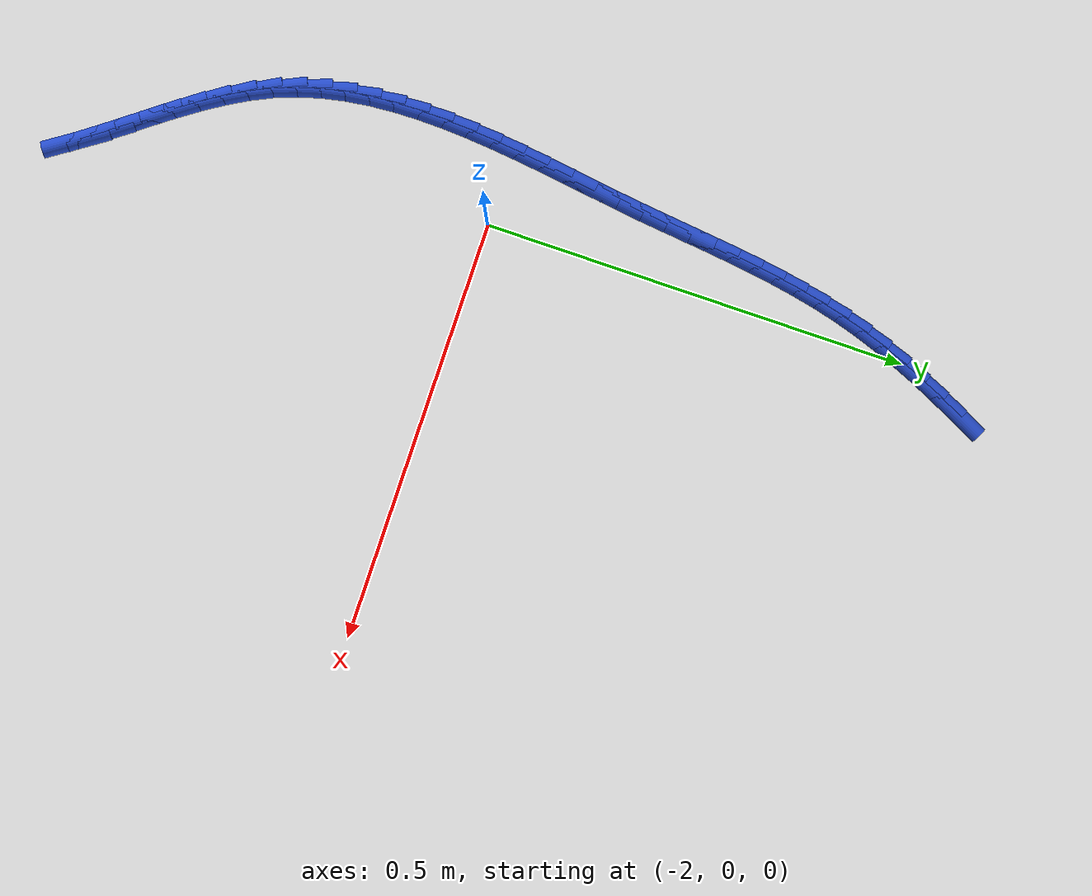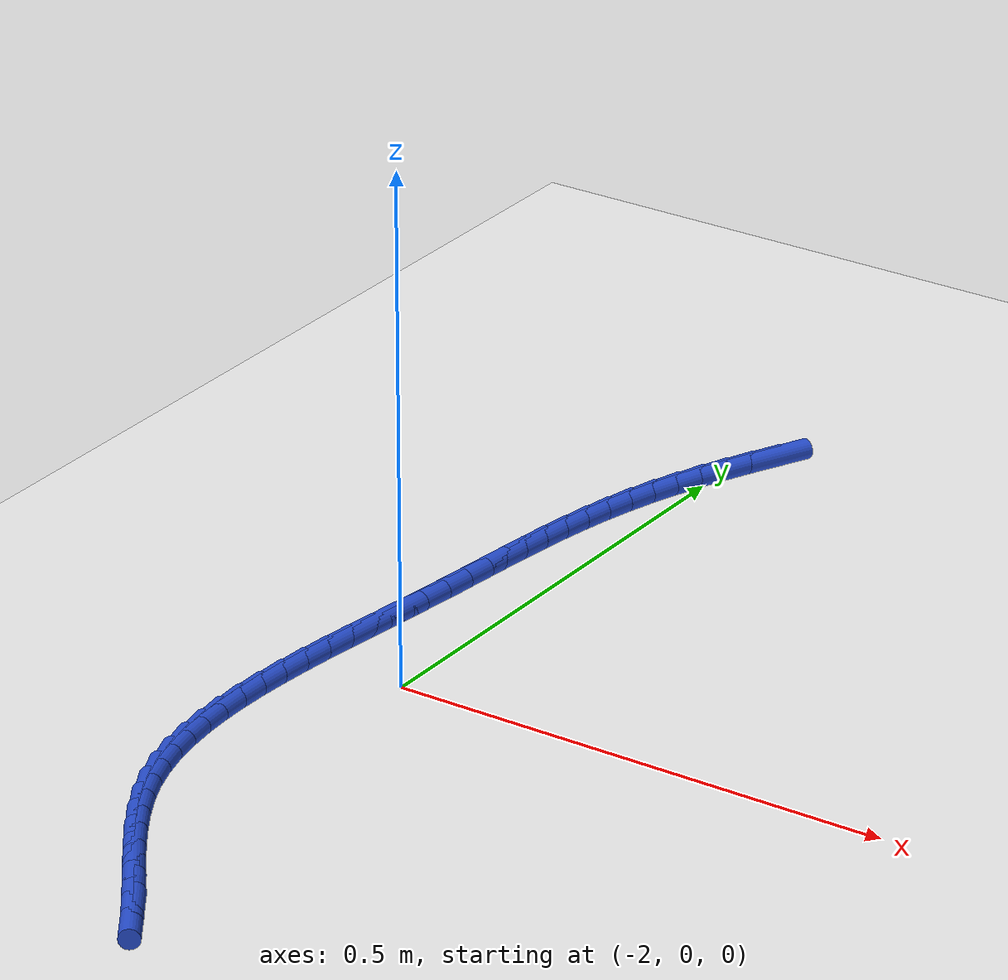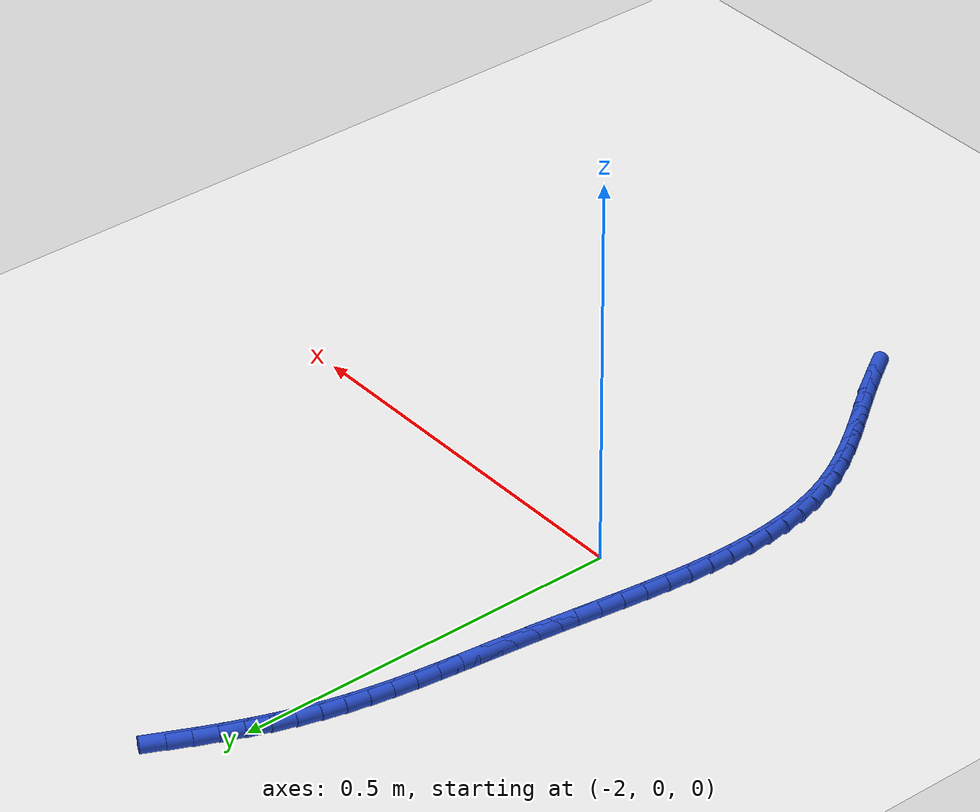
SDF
<sdf version="1.6">
 <world name="default">
  <model name="ground_plane">
   <static>1</static>
   <link name="link">
    <collision name="collision">
     <geometry><plane><normal>0 0 1</normal><size>100 100</size></plane></geometry>
     <surface><friction><ode><mu>100</mu><mu2>50</mu2></ode></friction></surface>
    </collision>
    <visual name="visual">
     <cast_shadows>0</cast_shadows>
     <geometry><plane><normal>0 0 1</normal><size>100 100</size></plane></geometry>
     <material>
      <script><uri>file://media/materials/scripts/gazebo.material</uri><name>Gazebo/WhiteGlow</name></script>
     </material>
    </visual>
   </link>
  </model>
  <model name="line">
   <link name="link_96">
    <pose>-1.9685399651001692 0.5728707135156921 0.01 0 1.57 1.1212060238936634</pose>
    <collision name="collision">
     <geometry><cylinder><radius>0.01</radius><length>0.08</length></cylinder></geometry>
    </collision>
    <visual name="visual">
     <material>
      <script><name>Gazebo/Blue</name><uri>file://media/materials/scripts/gazebo.material</uri></script>
     </material>
     <geometry><cylinder><radius>0.01</radius><length>0.08</length></cylinder></geometry>
    </visual>
   </link>
   <link name="link_97">
    <pose>-1.9811723134961796 0.5466923862350136 0.01 0 1.57 1.1467664616136561</pose>
    <collision name="collision">
     <geometry><cylinder><radius>0.01</radius><length>0.08</length></cylinder></geometry>
    </collision>
    <visual name="visual">
     <material>
      <script><name>Gazebo/Blue</name><uri>file://media/materials/scripts/gazebo.material</uri></script>
     </material>
     <geometry><cylinder><radius>0.01</radius><length>0.08</length></cylinder></geometry>
    </visual>
   </link>
   <link name="link_98">
    <pose>-1.9930625852352253 0.5203523740852943 0.01 0 1.57 1.1759096296076628</pose>
    <collision name="collision">
     <geometry><cylinder><radius>0.01</radius><length>0.08</length></cylinder></geometry>
    </collision>
    <visual name="visual">
     <material>
      <script><name>Gazebo/Blue</name><uri>file://media/materials/scripts/gazebo.material</uri></script>
     </material>
     <geometry><cylinder><radius>0.01</radius><length>0.08</length></cylinder></geometry>
    </visual>
   </link>
   <link name="link_99">
    <pose>-2.0041208221454756 0.49381974863123973 0.01 0 1.57 1.208665380438519</pose>
    <collision name="collision">
     <geometry><cylinder><radius>0.01</radius><length>0.08</length></cylinder></geometry>
    </collision>
    <visual name="visual">
     <material>
      <script><name>Gazebo/Blue</name><uri>file://media/materials/scripts/gazebo.material</uri></script>
     </material>
     <geometry><cylinder><radius>0.01</radius><length>0.08</length></cylinder></geometry>
    </visual>
   </link>
   <link name="link_100">
    <pose>-2.0142570660551025 0.46706358143755744 0.01 0 1.57 1.2450278693126124</pose>
    <collision name="collision">
     <geometry><cylinder><radius>0.01</radius><length>0.08</length></cylinder></geometry>
    </collision>
    <visual name="visual">
     <material>
      <script><name>Gazebo/Blue</name><uri>file://media/materials/scripts/gazebo.material</uri></script>
     </material>
     <geometry><cylinder><radius>0.01</radius><length>0.08</length></cylinder></geometry>
    </visual>
   </link>
   <link name="link_101">
    <pose>-2.0233813587922755 0.4400529440689525 0.01 0 1.57 1.284942570876051</pose>
    <collision name="collision">
     <geometry><cylinder><radius>0.01</radius><length>0.08</length></cylinder></geometry>
    </collision>
    <visual name="visual">
     <material>
      <script><name>Gazebo/Blue</name><uri>file://media/materials/scripts/gazebo.material</uri></script>
     </material>
     <geometry><cylinder><radius>0.01</radius><length>0.08</length></cylinder></geometry>
    </visual>
   </link>
   <link name="link_102">
    <pose>-2.031403742185165 0.4127569080901323 0.01 0 1.57 1.3271658144277942</pose>
    <collision name="collision">
     <geometry><cylinder><radius>0.01</radius><length>0.08</length></cylinder></geometry>
    </collision>
    <visual name="visual">
     <material>
      <script><name>Gazebo/Blue</name><uri>file://media/materials/scripts/gazebo.material</uri></script>
     </material>
     <geometry><cylinder><radius>0.01</radius><length>0.08</length></cylinder></geometry>
    </visual>
   </link>
   <link name="link_103">
    <pose>-2.038265984201959 0.38514981449354085 0.01 0 1.57 1.365330983333939</pose>
    <collision name="collision">
     <geometry><cylinder><radius>0.01</radius><length>0.08</length></cylinder></geometry>
    </collision>
    <visual name="visual">
     <material>
      <script><name>Gazebo/Blue</name><uri>file://media/materials/scripts/gazebo.material</uri></script>
     </material>
     <geometry><cylinder><radius>0.01</radius><length>0.08</length></cylinder></geometry>
    </visual>
   </link>
   <link name="link_104">
    <pose>-2.044083635602141 0.3572348680369746 0.01 0 1.57 1.397168854580767</pose>
    <collision name="collision">
     <geometry><cylinder><radius>0.01</radius><length>0.08</length></cylinder></geometry>
    </collision>
    <visual name="visual">
     <material>
      <script><name>Gazebo/Blue</name><uri>file://media/materials/scripts/gazebo.material</uri></script>
     </material>
     <geometry><cylinder><radius>0.01</radius><length>0.08</length></cylinder></geometry>
    </visual>
   </link>
   <link name="link_105">
    <pose>-2.0490314452451335 0.32902510575248994 0.01 0 1.57 1.4226260404690254</pose>
    <collision name="collision">
     <geometry><cylinder><radius>0.01</radius><length>0.08</length></cylinder></geometry>
    </collision>
    <visual name="visual">
     <material>
      <script><name>Gazebo/Blue</name><uri>file://media/materials/scripts/gazebo.material</uri></script>
     </material>
     <geometry><cylinder><radius>0.01</radius><length>0.08</length></cylinder></geometry>
    </visual>
   </link>
   <link name="link_106">
    <pose>-2.0532842118261856 0.3005335729494286 0.01 0 1.57 1.4417371279195235</pose>
    <collision name="collision">
     <geometry><cylinder><radius>0.01</radius><length>0.08</length></cylinder></geometry>
    </collision>
    <visual name="visual">
     <material>
      <script><name>Gazebo/Blue</name><uri>file://media/materials/scripts/gazebo.material</uri></script>
     </material>
     <geometry><cylinder><radius>0.01</radius><length>0.08</length></cylinder></geometry>
    </visual>
   </link>
   <link name="link_107">
    <pose>-2.0570167340405487 0.271773314937132 0.01 0 1.57 1.454590649719538</pose>
    <collision name="collision">
     <geometry><cylinder><radius>0.01</radius><length>0.08</length></cylinder></geometry>
    </collision>
    <visual name="visual">
     <material>
      <script><name>Gazebo/Blue</name><uri>file://media/materials/scripts/gazebo.material</uri></script>
     </material>
     <geometry><cylinder><radius>0.01</radius><length>0.08</length></cylinder></geometry>
    </visual>
   </link>
   <link name="link_108">
    <pose>-2.0604038105834723 0.24275737702494118 0.01 0 1.57 1.4613047921438742</pose>
    <collision name="collision">
     <geometry><cylinder><radius>0.01</radius><length>0.08</length></cylinder></geometry>
    </collision>
    <visual name="visual">
     <material>
      <script><name>Gazebo/Blue</name><uri>file://media/materials/scripts/gazebo.material</uri></script>
     </material>
     <geometry><cylinder><radius>0.01</radius><length>0.08</length></cylinder></geometry>
    </visual>
   </link>
   <link name="link_109">
    <pose>-2.0636202401502066 0.21349880452219835 0.01 0 1.57 1.4620114188816438</pose>
    <collision name="collision">
     <geometry><cylinder><radius>0.01</radius><length>0.08</length></cylinder></geometry>
    </collision>
    <visual name="visual">
     <material>
      <script><name>Gazebo/Blue</name><uri>file://media/materials/scripts/gazebo.material</uri></script>
     </material>
     <geometry><cylinder><radius>0.01</radius><length>0.08</length></cylinder></geometry>
    </visual>
   </link>
   <link name="link_110">
    <pose>-2.0668408214360023 0.1840106427382442 0.01 0 1.57 1.4568478663190563</pose>
    <collision name="collision">
     <geometry><cylinder><radius>0.01</radius><length>0.08</length></cylinder></geometry>
    </collision>
    <visual name="visual">
     <material>
      <script><name>Gazebo/Blue</name><uri>file://media/materials/scripts/gazebo.material</uri></script>
     </material>
     <geometry><cylinder><radius>0.01</radius><length>0.08</length></cylinder></geometry>
    </visual>
   </link>
   <link name="link_111">
    <pose>-2.070240353136109 0.15430593698242095 0.01 0 1.57 1.446715431470572</pose>
    <collision name="collision">
     <geometry><cylinder><radius>0.01</radius><length>0.08</length></cylinder></geometry>
    </collision>
    <visual name="visual">
     <material>
      <script><name>Gazebo/Blue</name><uri>file://media/materials/scripts/gazebo.material</uri></script>
     </material>
     <geometry><cylinder><radius>0.01</radius><length>0.08</length></cylinder></geometry>
    </visual>
   </link>
   <link name="link_112">
    <pose>-2.0739701546148916 0.1244009272955888 0.01 0 1.57 1.4387756884809653</pose>
    <collision name="collision">
     <geometry><cylinder><radius>0.01</radius><length>0.08</length></cylinder></geometry>
    </collision>
    <visual name="visual">
     <material>
      <script><name>Gazebo/Blue</name><uri>file://media/materials/scripts/gazebo.material</uri></script>
     </material>
     <geometry><cylinder><radius>0.01</radius><length>0.08</length></cylinder></geometry>
    </visual>
   </link>
   <link name="link_113">
    <pose>-2.0779618037324137 0.09434175299953233 0.01 0 1.57 1.4367804453872022</pose>
    <collision name="collision">
     <geometry><cylinder><radius>0.01</radius><length>0.08</length></cylinder></geometry>
    </collision>
    <visual name="visual">
     <material>
      <script><name>Gazebo/Blue</name><uri>file://media/materials/scripts/gazebo.material</uri></script>
     </material>
     <geometry><cylinder><radius>0.01</radius><length>0.08</length></cylinder></geometry>
    </visual>
   </link>
   <link name="link_114">
    <pose>-2.0820268648346403 0.06419088313846738 0.01 0 1.57 1.4406927988133817</pose>
    <collision name="collision">
     <geometry><cylinder><radius>0.01</radius><length>0.08</length></cylinder></geometry>
    </collision>
    <visual name="visual">
     <material>
      <script><name>Gazebo/Blue</name><uri>file://media/materials/scripts/gazebo.material</uri></script>
     </material>
     <geometry><cylinder><radius>0.01</radius><length>0.08</length></cylinder></geometry>
    </visual>
   </link>
   <link name="link_115">
    <pose>-2.085975685970697 0.034010952252889456 0.01 0 1.57 1.4505379887904355</pose>
    <collision name="collision">
     <geometry><cylinder><radius>0.01</radius><length>0.08</length></cylinder></geometry>
    </collision>
    <visual name="visual">
     <material>
      <script><name>Gazebo/Blue</name><uri>file://media/materials/scripts/gazebo.material</uri></script>
     </material>
     <geometry><cylinder><radius>0.01</radius><length>0.08</length></cylinder></geometry>
    </visual>
   </link>
   <link name="link_116">
    <pose>-2.0896186151897047 0.0038645948832926767 0.01 0 1.57 1.4664390557508917</pose>
    <collision name="collision">
     <geometry><cylinder><radius>0.01</radius><length>0.08</length></cylinder></geometry>
    </collision>
    <visual name="visual">
     <material>
      <script><name>Gazebo/Blue</name><uri>file://media/materials/scripts/gazebo.material</uri></script>
     </material>
     <geometry><cylinder><radius>0.01</radius><length>0.08</length></cylinder></geometry>
    </visual>
   </link>
   <link name="link_117">
    <pose>-2.0927660005407884 -0.02618555442982909 0.01 0 1.57 1.4886104450520554</pose>
    <collision name="collision">
     <geometry><cylinder><radius>0.01</radius><length>0.08</length></cylinder></geometry>
    </collision>
    <visual name="visual">
     <material>
      <script><name>Gazebo/Blue</name><uri>file://media/materials/scripts/gazebo.material</uri></script>
     </material>
     <geometry><cylinder><radius>0.01</radius><length>0.08</length></cylinder></geometry>
    </visual>
   </link>
   <link name="link_118">
    <pose>-2.0952281900730694 -0.05607686114597964 0.01 0 1.57 1.5173470851522761</pose>
    <collision name="collision">
     <geometry><cylinder><radius>0.01</radius><length>0.08</length></cylinder></geometry>
    </collision>
    <visual name="visual">
     <material>
      <script><name>Gazebo/Blue</name><uri>file://media/materials/scripts/gazebo.material</uri></script>
     </material>
     <geometry><cylinder><radius>0.01</radius><length>0.08</length></cylinder></geometry>
    </visual>
   </link>
   <link name="link_119">
    <pose>-2.096815531835672 -0.08574669072466515 0.01 0 1.57 1.5530058177310029</pose>
    <collision name="collision">
     <geometry><cylinder><radius>0.01</radius><length>0.08</length></cylinder></geometry>
    </collision>
    <visual name="visual">
     <material>
      <script><name>Gazebo/Blue</name><uri>file://media/materials/scripts/gazebo.material</uri></script>
     </material>
     <geometry><cylinder><radius>0.01</radius><length>0.08</length></cylinder></geometry>
    </visual>
   </link>
   <link name="link_120">
    <pose>-2.0973383738777187 -0.11513240862539104 0.01 0 1.57 -1.545617918537367</pose>
    <collision name="collision">
     <geometry><cylinder><radius>0.01</radius><length>0.08</length></cylinder></geometry>
    </collision>
    <visual name="visual">
     <material>
      <script><name>Gazebo/Blue</name><uri>file://media/materials/scripts/gazebo.material</uri></script>
     </material>
     <geometry><cylinder><radius>0.01</radius><length>0.08</length></cylinder></geometry>
    </visual>
   </link>
   <link name="link_121">
    <pose>-2.096607064248332 -0.14417138030766263 0.01 0 1.57 -1.4949676953276398</pose>
    <collision name="collision">
     <geometry><cylinder><radius>0.01</radius><length>0.08</length></cylinder></geometry>
    </collision>
    <visual name="visual">
     <material>
      <script><name>Gazebo/Blue</name><uri>file://media/materials/scripts/gazebo.material</uri></script>
     </material>
     <geometry><cylinder><radius>0.01</radius><length>0.08</length></cylinder></geometry>
    </visual>
   </link>
   <link name="link_122">
    <pose>-2.094431950996636 -0.17280097123098612 0.01 0 1.57 -1.4363531281535007</pose>
    <collision name="collision">
     <geometry><cylinder><radius>0.01</radius><length>0.08</length></cylinder></geometry>
    </collision>
    <visual name="visual">
     <material>
      <script><name>Gazebo/Blue</name><uri>file://media/materials/scripts/gazebo.material</uri></script>
     </material>
     <geometry><cylinder><radius>0.01</radius><length>0.08</length></cylinder></geometry>
    </visual>
   </link>
   <link name="link_123">
    <pose>-2.090623382171753 -0.20095854685486536 0.01 0 1.57 -1.369675777400341</pose>
    <collision name="collision">
     <geometry><cylinder><radius>0.01</radius><length>0.08</length></cylinder></geometry>
    </collision>
    <visual name="visual">
     <material>
      <script><name>Gazebo/Blue</name><uri>file://media/materials/scripts/gazebo.material</uri></script>
     </material>
     <geometry><cylinder><radius>0.01</radius><length>0.08</length></cylinder></geometry>
    </visual>
   </link>
   <link name="link_124">
    <pose>-2.0849917058228056 -0.2285814726388064 0.01 0 1.57 -1.2951387918760018</pose>
    <collision name="collision">
     <geometry><cylinder><radius>0.01</radius><length>0.08</length></cylinder></geometry>
    </collision>
    <visual name="visual">
     <material>
      <script><name>Gazebo/Blue</name><uri>file://media/materials/scripts/gazebo.material</uri></script>
     </material>
     <geometry><cylinder><radius>0.01</radius><length>0.08</length></cylinder></geometry>
    </visual>
   </link>
   <link name="link_125">
    <pose>-2.077347269998918 -0.2556071140423148 0.01 0 1.57 -1.2133664070064372</pose>
    <collision name="collision">
     <geometry><cylinder><radius>0.01</radius><length>0.08</length></cylinder></geometry>
    </collision>
    <visual name="visual">
     <material>
      <script><name>Gazebo/Blue</name><uri>file://media/materials/scripts/gazebo.material</uri></script>
     </material>
     <geometry><cylinder><radius>0.01</radius><length>0.08</length></cylinder></geometry>
    </visual>
   </link>
   <link name="link_126">
    <pose>-2.0675004245700257 -0.2819728370286596 0.01 0 1.57 -1.129462282693284</pose>
    <collision name="collision">
     <geometry><cylinder><radius>0.01</radius><length>0.08</length></cylinder></geometry>
    </collision>
    <visual name="visual">
     <material>
      <script><name>Gazebo/Blue</name><uri>file://media/materials/scripts/gazebo.material</uri></script>
     </material>
     <geometry><cylinder><radius>0.01</radius><length>0.08</length></cylinder></geometry>
    </visual>
   </link>
   <link name="link_127">
    <pose>-2.055371877863093 -0.3076465403632765 0.01 0 1.57 -1.0589013907691092</pose>
    <collision name="collision">
     <geometry><cylinder><radius>0.01</radius><length>0.08</length></cylinder></geometry>
    </collision>
    <visual name="visual">
     <material>
      <script><name>Gazebo/Blue</name><uri>file://media/materials/scripts/gazebo.material</uri></script>
     </material>
     <geometry><cylinder><radius>0.01</radius><length>0.08</length></cylinder></geometry>
    </visual>
   </link>
   <link name="link_128">
    <pose>-2.0412905242066715 -0.3327090553658456 0.01 0 1.57 -1.0045620188056497</pose>
    <collision name="collision">
     <geometry><cylinder><radius>0.01</radius><length>0.08</length></cylinder></geometry>
    </collision>
    <visual name="visual">
     <material>
      <script><name>Gazebo/Blue</name><uri>file://media/materials/scripts/gazebo.material</uri></script>
     </material>
     <geometry><cylinder><radius>0.01</radius><length>0.08</length></cylinder></geometry>
    </visual>
   </link>
   <link name="link_129">
    <pose>-2.0256796097920207 -0.3572673176242267 0.01 0 1.57 -0.9655197287707613</pose>
    <collision name="collision">
     <geometry><cylinder><radius>0.01</radius><length>0.08</length></cylinder></geometry>
    </collision>
    <visual name="visual">
     <material>
      <script><name>Gazebo/Blue</name><uri>file://media/materials/scripts/gazebo.material</uri></script>
     </material>
     <geometry><cylinder><radius>0.01</radius><length>0.08</length></cylinder></geometry>
    </visual>
   </link>
   <link name="link_130">
    <pose>-2.008962380810401 -0.3814282627262802 0.01 0 1.57 -0.9409079899022532</pose>
    <collision name="collision">
     <geometry><cylinder><radius>0.01</radius><length>0.08</length></cylinder></geometry>
    </collision>
    <visual name="visual">
     <material>
      <script><name>Gazebo/Blue</name><uri>file://media/materials/scripts/gazebo.material</uri></script>
     </material>
     <geometry><cylinder><radius>0.01</radius><length>0.08</length></cylinder></geometry>
    </visual>
   </link>
   <link name="link_131">
    <pose>-1.9915620834530692 -0.40529882625986635 0.01 0 1.57 -0.9301441768434988</pose>
    <collision name="collision">
     <geometry><cylinder><radius>0.01</radius><length>0.08</length></cylinder></geometry>
    </collision>
    <visual name="visual">
     <material>
      <script><name>Gazebo/Blue</name><uri>file://media/materials/scripts/gazebo.material</uri></script>
     </material>
     <geometry><cylinder><radius>0.01</radius><length>0.08</length></cylinder></geometry>
    </visual>
   </link>
   <link name="link_132">
    <pose>-1.9739019639112867 -0.4289859438128441 0.01 0 1.57 -0.9330463618013296</pose>
    <collision name="collision">
     <geometry><cylinder><radius>0.01</radius><length>0.08</length></cylinder></geometry>
    </collision>
    <visual name="visual">
     <material>
      <script><name>Gazebo/Blue</name><uri>file://media/materials/scripts/gazebo.material</uri></script>
     </material>
     <geometry><cylinder><radius>0.01</radius><length>0.08</length></cylinder></geometry>
    </visual>
   </link>
   <link name="link_133">
    <pose>-1.9564052683763133 -0.45259655097307416 0.01 0 1.57 -0.9498866189387403</pose>
    <collision name="collision">
     <geometry><cylinder><radius>0.01</radius><length>0.08</length></cylinder></geometry>
    </collision>
    <visual name="visual">
     <material>
      <script><name>Gazebo/Blue</name><uri>file://media/materials/scripts/gazebo.material</uri></script>
     </material>
     <geometry><cylinder><radius>0.01</radius><length>0.08</length></cylinder></geometry>
    </visual>
   </link>
   <link name="link_134">
    <pose>-1.9394952339651494 -0.47623758311217235 0.01 0 1.57 -0.9783592508208356</pose>
    <collision name="collision">
     <geometry><cylinder><radius>0.01</radius><length>0.08</length></cylinder></geometry>
    </collision>
    <visual name="visual">
     <material>
      <script><name>Gazebo/Blue</name><uri>file://media/materials/scripts/gazebo.material</uri></script>
     </material>
     <geometry><cylinder><radius>0.01</radius><length>0.08</length></cylinder></geometry>
    </visual>
   </link>
  </model>
 </world>
</sdf>
